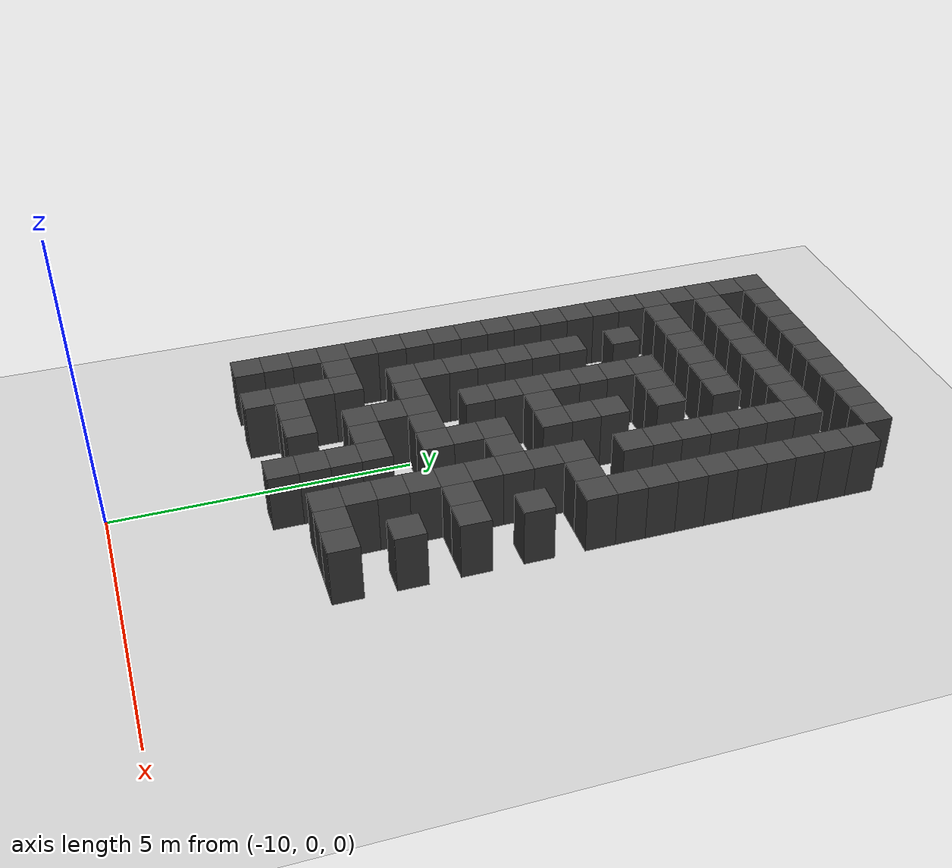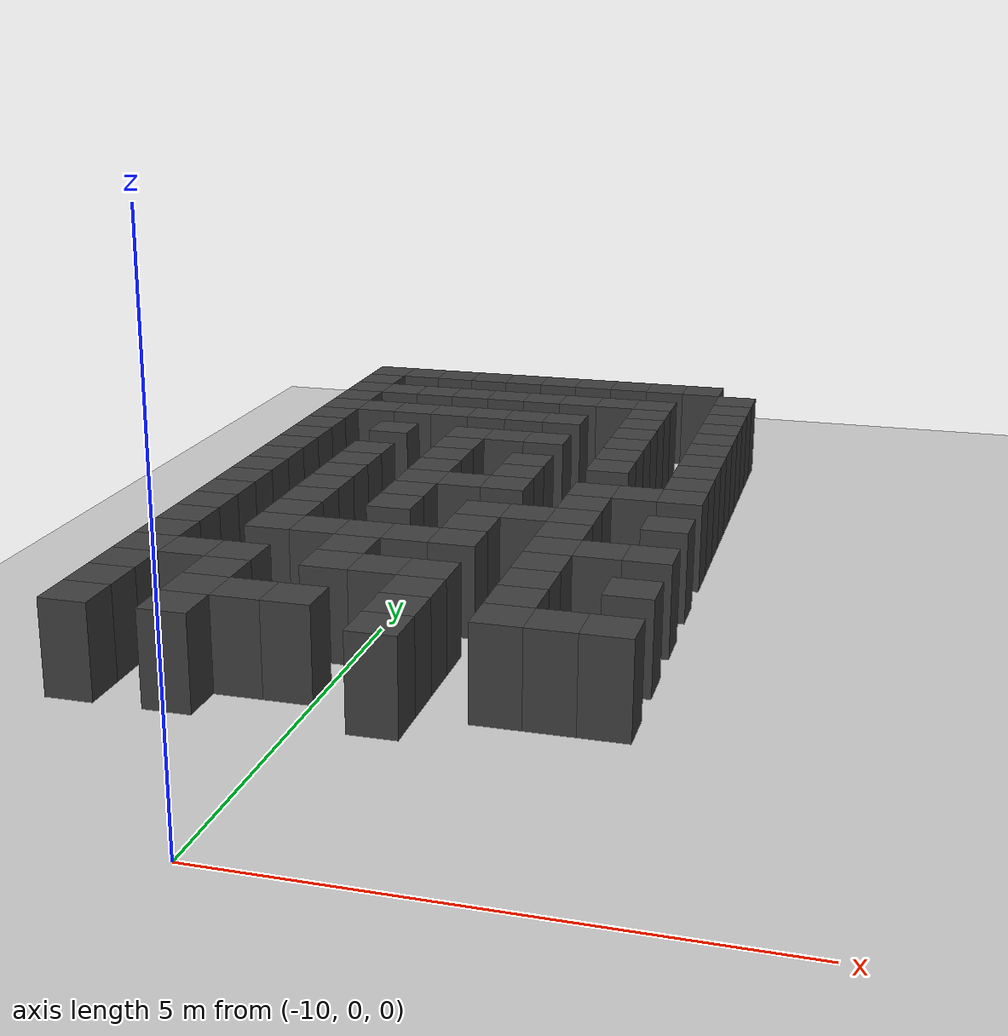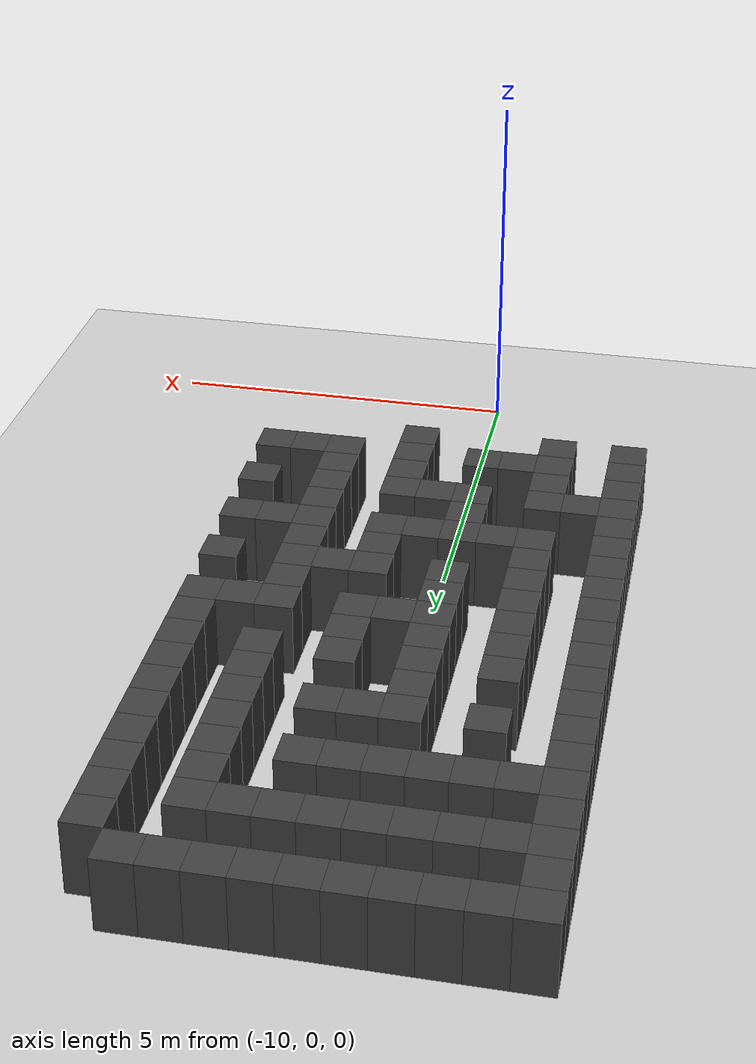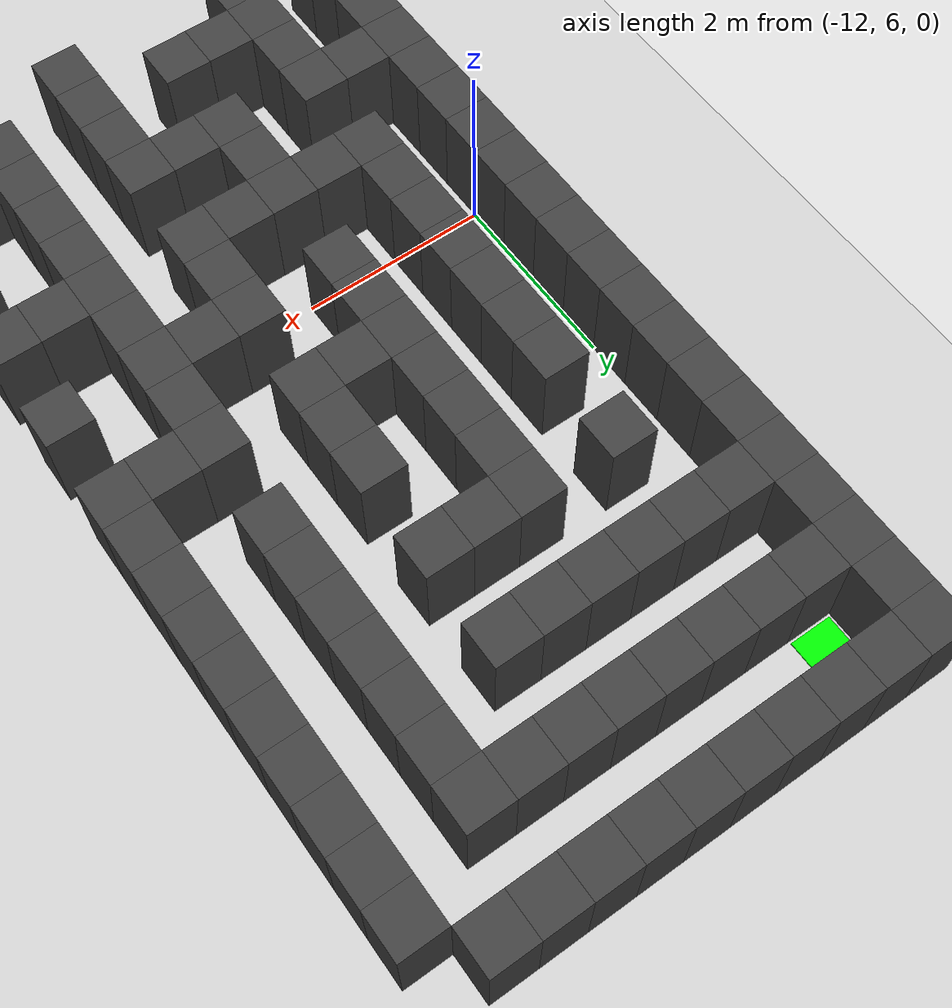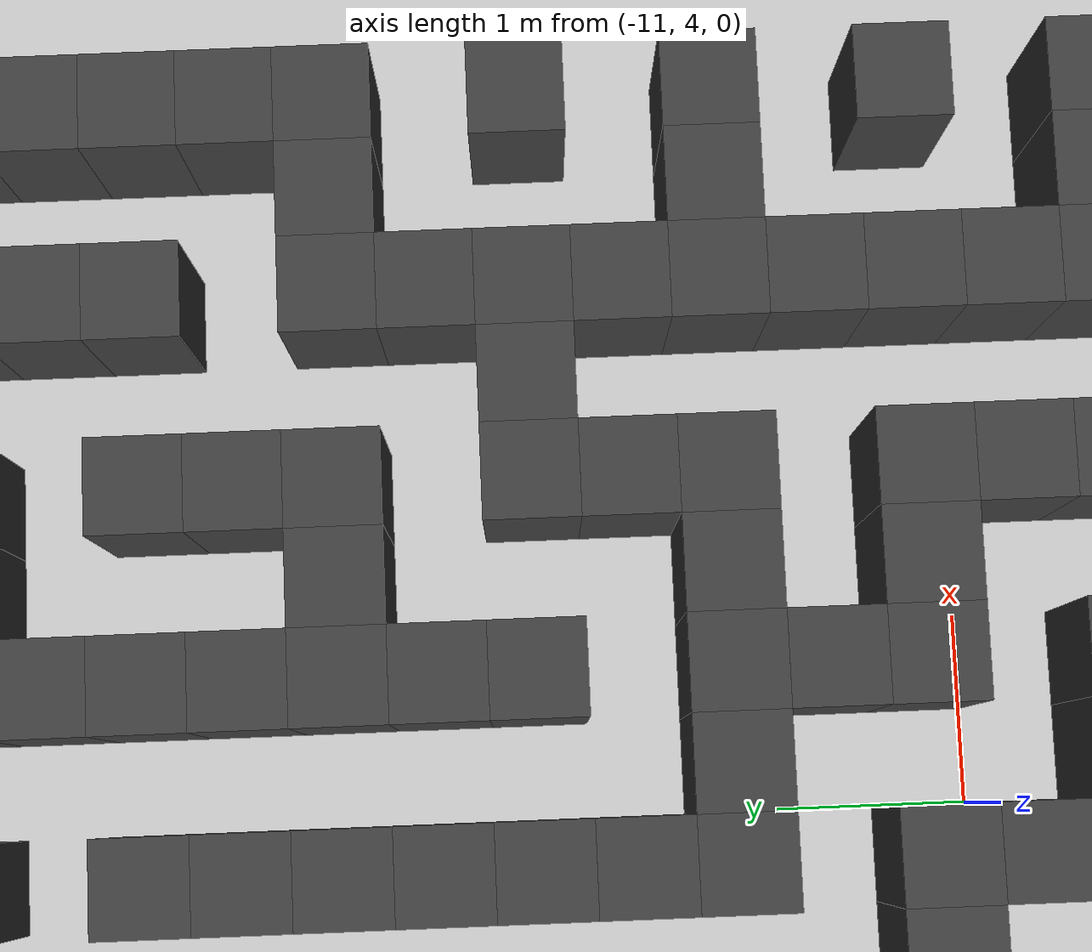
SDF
<sdf version="1.7">
 <world name="map_18347">
  <model name="ground_plane">
   <static>true</static>
   <link name="link">
    <collision name="collision">
     <geometry><plane><normal>0 0 1</normal><size>200 200</size></plane></geometry>
    </collision>
    <visual name="visual">
     <geometry><plane><normal>0 0 1</normal><size>200 200</size></plane></geometry>
     <material><ambient>0.8 0.8 0.8 1</ambient><diffuse>0.8 0.8 0.8 1</diffuse></material>
    </visual>
   </link>
  </model>
  <model name="maze_environment">
   <static>true</static>
   <link name="wall_0">
    <pose>-12.250 12.250 0.500 0 0 0</pose>
    <collision name="col"><geometry><box><size>0.5 0.5 1.0</size></box></geometry></collision>
    <visual name="vis">
     <geometry><box><size>0.5 0.5 1.0</size></box></geometry>
     <material><ambient>0.15 0.15 0.15 1</ambient><diffuse>0.25 0.25 0.25 1</diffuse></material>
    </visual>
   </link>
   <link name="wall_1">
    <pose>-11.750 12.250 0.500 0 0 0</pose>
    <collision name="col"><geometry><box><size>0.5 0.5 1.0</size></box></geometry></collision>
    <visual name="vis">
     <geometry><box><size>0.5 0.5 1.0</size></box></geometry>
     <material><ambient>0.15 0.15 0.15 1</ambient><diffuse>0.25 0.25 0.25 1</diffuse></material>
    </visual>
   </link>
   <link name="wall_2">
    <pose>-11.250 12.250 0.500 0 0 0</pose>
    <collision name="col"><geometry><box><size>0.5 0.5 1.0</size></box></geometry></collision>
    <visual name="vis">
     <geometry><box><size>0.5 0.5 1.0</size></box></geometry>
     <material><ambient>0.15 0.15 0.15 1</ambient><diffuse>0.25 0.25 0.25 1</diffuse></material>
    </visual>
   </link>
   <link name="wall_3">
    <pose>-10.750 12.250 0.500 0 0 0</pose>
    <collision name="col"><geometry><box><size>0.5 0.5 1.0</size></box></geometry></collision>
    <visual name="vis">
     <geometry><box><size>0.5 0.5 1.0</size></box></geometry>
     <material><ambient>0.15 0.15 0.15 1</ambient><diffuse>0.25 0.25 0.25 1</diffuse></material>
    </visual>
   </link>
   <link name="wall_4">
    <pose>-10.250 12.250 0.500 0 0 0</pose>
    <collision name="col"><geometry><box><size>0.5 0.5 1.0</size></box></geometry></collision>
    <visual name="vis">
     <geometry><box><size>0.5 0.5 1.0</size></box></geometry>
     <material><ambient>0.15 0.15 0.15 1</ambient><diffuse>0.25 0.25 0.25 1</diffuse></material>
    </visual>
   </link>
   <link name="wall_5">
    <pose>-9.750 12.250 0.500 0 0 0</pose>
    <collision name="col"><geometry><box><size>0.5 0.5 1.0</size></box></geometry></collision>
    <visual name="vis">
     <geometry><box><size>0.5 0.5 1.0</size></box></geometry>
     <material><ambient>0.15 0.15 0.15 1</ambient><diffuse>0.25 0.25 0.25 1</diffuse></material>
    </visual>
   </link>
   <link name="wall_6">
    <pose>-9.250 12.250 0.500 0 0 0</pose>
    <collision name="col"><geometry><box><size>0.5 0.5 1.0</size></box></geometry></collision>
    <visual name="vis">
     <geometry><box><size>0.5 0.5 1.0</size></box></geometry>
     <material><ambient>0.15 0.15 0.15 1</ambient><diffuse>0.25 0.25 0.25 1</diffuse></material>
    </visual>
   </link>
   <link name="wall_7">
    <pose>-8.750 12.250 0.500 0 0 0</pose>
    <collision name="col"><geometry><box><size>0.5 0.5 1.0</size></box></geometry></collision>
    <visual name="vis">
     <geometry><box><size>0.5 0.5 1.0</size></box></geometry>
     <material><ambient>0.15 0.15 0.15 1</ambient><diffuse>0.25 0.25 0.25 1</diffuse></material>
    </visual>
   </link>
   <link name="wall_8">
    <pose>-8.250 12.250 0.500 0 0 0</pose>
    <collision name="col"><geometry><box><size>0.5 0.5 1.0</size></box></geometry></collision>
    <visual name="vis">
     <geometry><box><size>0.5 0.5 1.0</size></box></geometry>
     <material><ambient>0.15 0.15 0.15 1</ambient><diffuse>0.25 0.25 0.25 1</diffuse></material>
    </visual>
   </link>
   <link name="wall_9">
    <pose>-7.750 12.250 0.500 0 0 0</pose>
    <collision name="col"><geometry><box><size>0.5 0.5 1.0</size></box></geometry></collision>
    <visual name="vis">
     <geometry><box><size>0.5 0.5 1.0</size></box></geometry>
     <material><ambient>0.15 0.15 0.15 1</ambient><diffuse>0.25 0.25 0.25 1</diffuse></material>
    </visual>
   </link>
   <link name="wall_50">
    <pose>-12.250 11.750 0.500 0 0 0</pose>
    <collision name="col"><geometry><box><size>0.5 0.5 1.0</size></box></geometry></collision>
    <visual name="vis">
     <geometry><box><size>0.5 0.5 1.0</size></box></geometry>
     <material><ambient>0.15 0.15 0.15 1</ambient><diffuse>0.25 0.25 0.25 1</diffuse></material>
    </visual>
   </link>
   <link name="wall_51">
    <pose>-7.250 11.750 0.500 0 0 0</pose>
    <collision name="col"><geometry><box><size>0.5 0.5 1.0</size></box></geometry></collision>
    <visual name="vis">
     <geometry><box><size>0.5 0.5 1.0</size></box></geometry>
     <material><ambient>0.15 0.15 0.15 1</ambient><diffuse>0.25 0.25 0.25 1</diffuse></material>
    </visual>
   </link>
   <link name="wall_58">
    <pose>-12.250 11.250 0.500 0 0 0</pose>
    <collision name="col"><geometry><box><size>0.5 0.5 1.0</size></box></geometry></collision>
    <visual name="vis">
     <geometry><box><size>0.5 0.5 1.0</size></box></geometry>
     <material><ambient>0.15 0.15 0.15 1</ambient><diffuse>0.25 0.25 0.25 1</diffuse></material>
    </visual>
   </link>
   <link name="wall_59">
    <pose>-11.750 11.250 0.500 0 0 0</pose>
    <collision name="col"><geometry><box><size>0.5 0.5 1.0</size></box></geometry></collision>
    <visual name="vis">
     <geometry><box><size>0.5 0.5 1.0</size></box></geometry>
     <material><ambient>0.15 0.15 0.15 1</ambient><diffuse>0.25 0.25 0.25 1</diffuse></material>
    </visual>
   </link>
   <link name="wall_60">
    <pose>-11.250 11.250 0.500 0 0 0</pose>
    <collision name="col"><geometry><box><size>0.5 0.5 1.0</size></box></geometry></collision>
    <visual name="vis">
     <geometry><box><size>0.5 0.5 1.0</size></box></geometry>
     <material><ambient>0.15 0.15 0.15 1</ambient><diffuse>0.25 0.25 0.25 1</diffuse></material>
    </visual>
   </link>
   <link name="wall_61">
    <pose>-10.750 11.250 0.500 0 0 0</pose>
    <collision name="col"><geometry><box><size>0.5 0.5 1.0</size></box></geometry></collision>
    <visual name="vis">
     <geometry><box><size>0.5 0.5 1.0</size></box></geometry>
     <material><ambient>0.15 0.15 0.15 1</ambient><diffuse>0.25 0.25 0.25 1</diffuse></material>
    </visual>
   </link>
   <link name="wall_62">
    <pose>-10.250 11.250 0.500 0 0 0</pose>
    <collision name="col"><geometry><box><size>0.5 0.5 1.0</size></box></geometry></collision>
    <visual name="vis">
     <geometry><box><size>0.5 0.5 1.0</size></box></geometry>
     <material><ambient>0.15 0.15 0.15 1</ambient><diffuse>0.25 0.25 0.25 1</diffuse></material>
    </visual>
   </link>
   <link name="wall_63">
    <pose>-9.750 11.250 0.500 0 0 0</pose>
    <collision name="col"><geometry><box><size>0.5 0.5 1.0</size></box></geometry></collision>
    <visual name="vis">
     <geometry><box><size>0.5 0.5 1.0</size></box></geometry>
     <material><ambient>0.15 0.15 0.15 1</ambient><diffuse>0.25 0.25 0.25 1</diffuse></material>
    </visual>
   </link>
   <link name="wall_64">
    <pose>-9.250 11.250 0.500 0 0 0</pose>
    <collision name="col"><geometry><box><size>0.5 0.5 1.0</size></box></geometry></collision>
    <visual name="vis">
     <geometry><box><size>0.5 0.5 1.0</size></box></geometry>
     <material><ambient>0.15 0.15 0.15 1</ambient><diffuse>0.25 0.25 0.25 1</diffuse></material>
    </visual>
   </link>
   <link name="wall_65">
    <pose>-8.750 11.250 0.500 0 0 0</pose>
    <collision name="col"><geometry><box><size>0.5 0.5 1.0</size></box></geometry></collision>
    <visual name="vis">
     <geometry><box><size>0.5 0.5 1.0</size></box></geometry>
     <material><ambient>0.15 0.15 0.15 1</ambient><diffuse>0.25 0.25 0.25 1</diffuse></material>
    </visual>
   </link>
   <link name="wall_66">
    <pose>-8.250 11.250 0.500 0 0 0</pose>
    <collision name="col"><geometry><box><size>0.5 0.5 1.0</size></box></geometry></collision>
    <visual name="vis">
     <geometry><box><size>0.5 0.5 1.0</size></box></geometry>
     <material><ambient>0.15 0.15 0.15 1</ambient><diffuse>0.25 0.25 0.25 1</diffuse></material>
    </visual>
   </link>
   <link name="wall_67">
    <pose>-7.250 11.250 0.500 0 0 0</pose>
    <collision name="col"><geometry><box><size>0.5 0.5 1.0</size></box></geometry></collision>
    <visual name="vis">
     <geometry><box><size>0.5 0.5 1.0</size></box></geometry>
     <material><ambient>0.15 0.15 0.15 1</ambient><diffuse>0.25 0.25 0.25 1</diffuse></material>
    </visual>
   </link>
   <link name="wall_94">
    <pose>-12.250 10.750 0.500 0 0 0</pose>
    <collision name="col"><geometry><box><size>0.5 0.5 1.0</size></box></geometry></collision>
    <visual name="vis">
     <geometry><box><size>0.5 0.5 1.0</size></box></geometry>
     <material><ambient>0.15 0.15 0.15 1</ambient><diffuse>0.25 0.25 0.25 1</diffuse></material>
    </visual>
   </link>
   <link name="wall_95">
    <pose>-8.250 10.750 0.500 0 0 0</pose>
    <collision name="col"><geometry><box><size>0.5 0.5 1.0</size></box></geometry></collision>
    <visual name="vis">
     <geometry><box><size>0.5 0.5 1.0</size></box></geometry>
     <material><ambient>0.15 0.15 0.15 1</ambient><diffuse>0.25 0.25 0.25 1</diffuse></material>
    </visual>
   </link>
   <link name="wall_96">
    <pose>-7.250 10.750 0.500 0 0 0</pose>
    <collision name="col"><geometry><box><size>0.5 0.5 1.0</size></box></geometry></collision>
    <visual name="vis">
     <geometry><box><size>0.5 0.5 1.0</size></box></geometry>
     <material><ambient>0.15 0.15 0.15 1</ambient><diffuse>0.25 0.25 0.25 1</diffuse></material>
    </visual>
   </link>
   <link name="wall_106">
    <pose>-12.250 10.250 0.500 0 0 0</pose>
    <collision name="col"><geometry><box><size>0.5 0.5 1.0</size></box></geometry></collision>
    <visual name="vis">
     <geometry><box><size>0.5 0.5 1.0</size></box></geometry>
     <material><ambient>0.15 0.15 0.15 1</ambient><diffuse>0.25 0.25 0.25 1</diffuse></material>
    </visual>
   </link>
   <link name="wall_107">
    <pose>-11.750 10.250 0.500 0 0 0</pose>
    <collision name="col"><geometry><box><size>0.5 0.5 1.0</size></box></geometry></collision>
    <visual name="vis">
     <geometry><box><size>0.5 0.5 1.0</size></box></geometry>
     <material><ambient>0.15 0.15 0.15 1</ambient><diffuse>0.25 0.25 0.25 1</diffuse></material>
    </visual>
   </link>
   <link name="wall_108">
    <pose>-11.250 10.250 0.500 0 0 0</pose>
    <collision name="col"><geometry><box><size>0.5 0.5 1.0</size></box></geometry></collision>
    <visual name="vis">
     <geometry><box><size>0.5 0.5 1.0</size></box></geometry>
     <material><ambient>0.15 0.15 0.15 1</ambient><diffuse>0.25 0.25 0.25 1</diffuse></material>
    </visual>
   </link>
   <link name="wall_109">
    <pose>-10.750 10.250 0.500 0 0 0</pose>
    <collision name="col"><geometry><box><size>0.5 0.5 1.0</size></box></geometry></collision>
    <visual name="vis">
     <geometry><box><size>0.5 0.5 1.0</size></box></geometry>
     <material><ambient>0.15 0.15 0.15 1</ambient><diffuse>0.25 0.25 0.25 1</diffuse></material>
    </visual>
   </link>
   <link name="wall_110">
    <pose>-10.250 10.250 0.500 0 0 0</pose>
    <collision name="col"><geometry><box><size>0.5 0.5 1.0</size></box></geometry></collision>
    <visual name="vis">
     <geometry><box><size>0.5 0.5 1.0</size></box></geometry>
     <material><ambient>0.15 0.15 0.15 1</ambient><diffuse>0.25 0.25 0.25 1</diffuse></material>
    </visual>
   </link>
   <link name="wall_111">
    <pose>-9.750 10.250 0.500 0 0 0</pose>
    <collision name="col"><geometry><box><size>0.5 0.5 1.0</size></box></geometry></collision>
    <visual name="vis">
     <geometry><box><size>0.5 0.5 1.0</size></box></geometry>
     <material><ambient>0.15 0.15 0.15 1</ambient><diffuse>0.25 0.25 0.25 1</diffuse></material>
    </visual>
   </link>
   <link name="wall_112">
    <pose>-9.250 10.250 0.500 0 0 0</pose>
    <collision name="col"><geometry><box><size>0.5 0.5 1.0</size></box></geometry></collision>
    <visual name="vis">
     <geometry><box><size>0.5 0.5 1.0</size></box></geometry>
     <material><ambient>0.15 0.15 0.15 1</ambient><diffuse>0.25 0.25 0.25 1</diffuse></material>
    </visual>
   </link>
   <link name="wall_113">
    <pose>-8.250 10.250 0.500 0 0 0</pose>
    <collision name="col"><geometry><box><size>0.5 0.5 1.0</size></box></geometry></collision>
    <visual name="vis">
     <geometry><box><size>0.5 0.5 1.0</size></box></geometry>
     <material><ambient>0.15 0.15 0.15 1</ambient><diffuse>0.25 0.25 0.25 1</diffuse></material>
    </visual>
   </link>
   <link name="wall_114">
    <pose>-7.250 10.250 0.500 0 0 0</pose>
    <collision name="col"><geometry><box><size>0.5 0.5 1.0</size></box></geometry></collision>
    <visual name="vis">
     <geometry><box><size>0.5 0.5 1.0</size></box></geometry>
     <material><ambient>0.15 0.15 0.15 1</ambient><diffuse>0.25 0.25 0.25 1</diffuse></material>
    </visual>
   </link>
   <link name="wall_144">
    <pose>-12.250 9.750 0.500 0 0 0</pose>
    <collision name="col"><geometry><box><size>0.5 0.5 1.0</size></box></geometry></collision>
    <visual name="vis">
     <geometry><box><size>0.5 0.5 1.0</size></box></geometry>
     <material><ambient>0.15 0.15 0.15 1</ambient><diffuse>0.25 0.25 0.25 1</diffuse></material>
    </visual>
   </link>
   <link name="wall_145">
    <pose>-8.250 9.750 0.500 0 0 0</pose>
    <collision name="col"><geometry><box><size>0.5 0.5 1.0</size></box></geometry></collision>
    <visual name="vis">
     <geometry><box><size>0.5 0.5 1.0</size></box></geometry>
     <material><ambient>0.15 0.15 0.15 1</ambient><diffuse>0.25 0.25 0.25 1</diffuse></material>
    </visual>
   </link>
   <link name="wall_146">
    <pose>-7.250 9.750 0.500 0 0 0</pose>
    <collision name="col"><geometry><box><size>0.5 0.5 1.0</size></box></geometry></collision>
    <visual name="vis">
     <geometry><box><size>0.5 0.5 1.0</size></box></geometry>
     <material><ambient>0.15 0.15 0.15 1</ambient><diffuse>0.25 0.25 0.25 1</diffuse></material>
    </visual>
   </link>
   <link name="wall_161">
    <pose>-12.250 9.250 0.500 0 0 0</pose>
    <collision name="col"><geometry><box><size>0.5 0.5 1.0</size></box></geometry></collision>
    <visual name="vis">
     <geometry><box><size>0.5 0.5 1.0</size></box></geometry>
     <material><ambient>0.15 0.15 0.15 1</ambient><diffuse>0.25 0.25 0.25 1</diffuse></material>
    </visual>
   </link>
   <link name="wall_162">
    <pose>-11.250 9.250 0.500 0 0 0</pose>
    <collision name="col"><geometry><box><size>0.5 0.5 1.0</size></box></geometry></collision>
    <visual name="vis">
     <geometry><box><size>0.5 0.5 1.0</size></box></geometry>
     <material><ambient>0.15 0.15 0.15 1</ambient><diffuse>0.25 0.25 0.25 1</diffuse></material>
    </visual>
   </link>
   <link name="wall_163">
    <pose>-10.250 9.250 0.500 0 0 0</pose>
    <collision name="col"><geometry><box><size>0.5 0.5 1.0</size></box></geometry></collision>
    <visual name="vis">
     <geometry><box><size>0.5 0.5 1.0</size></box></geometry>
     <material><ambient>0.15 0.15 0.15 1</ambient><diffuse>0.25 0.25 0.25 1</diffuse></material>
    </visual>
   </link>
   <link name="wall_164">
    <pose>-9.750 9.250 0.500 0 0 0</pose>
    <collision name="col"><geometry><box><size>0.5 0.5 1.0</size></box></geometry></collision>
    <visual name="vis">
     <geometry><box><size>0.5 0.5 1.0</size></box></geometry>
     <material><ambient>0.15 0.15 0.15 1</ambient><diffuse>0.25 0.25 0.25 1</diffuse></material>
    </visual>
   </link>
   <link name="wall_165">
    <pose>-9.250 9.250 0.500 0 0 0</pose>
    <collision name="col"><geometry><box><size>0.5 0.5 1.0</size></box></geometry></collision>
    <visual name="vis">
     <geometry><box><size>0.5 0.5 1.0</size></box></geometry>
     <material><ambient>0.15 0.15 0.15 1</ambient><diffuse>0.25 0.25 0.25 1</diffuse></material>
    </visual>
   </link>
   <link name="wall_166">
    <pose>-8.250 9.250 0.500 0 0 0</pose>
    <collision name="col"><geometry><box><size>0.5 0.5 1.0</size></box></geometry></collision>
    <visual name="vis">
     <geometry><box><size>0.5 0.5 1.0</size></box></geometry>
     <material><ambient>0.15 0.15 0.15 1</ambient><diffuse>0.25 0.25 0.25 1</diffuse></material>
    </visual>
   </link>
   <link name="wall_167">
    <pose>-7.250 9.250 0.500 0 0 0</pose>
    <collision name="col"><geometry><box><size>0.5 0.5 1.0</size></box></geometry></collision>
    <visual name="vis">
     <geometry><box><size>0.5 0.5 1.0</size></box></geometry>
     <material><ambient>0.15 0.15 0.15 1</ambient><diffuse>0.25 0.25 0.25 1</diffuse></material>
    </visual>
   </link>
   <link name="wall_190">
    <pose>-12.250 8.750 0.500 0 0 0</pose>
    <collision name="col"><geometry><box><size>0.5 0.5 1.0</size></box></geometry></collision>
    <visual name="vis">
     <geometry><box><size>0.5 0.5 1.0</size></box></geometry>
     <material><ambient>0.15 0.15 0.15 1</ambient><diffuse>0.25 0.25 0.25 1</diffuse></material>
    </visual>
   </link>
   <link name="wall_191">
    <pose>-10.250 8.750 0.500 0 0 0</pose>
    <collision name="col"><geometry><box><size>0.5 0.5 1.0</size></box></geometry></collision>
    <visual name="vis">
     <geometry><box><size>0.5 0.5 1.0</size></box></geometry>
     <material><ambient>0.15 0.15 0.15 1</ambient><diffuse>0.25 0.25 0.25 1</diffuse></material>
    </visual>
   </link>
   <link name="wall_192">
    <pose>-8.250 8.750 0.500 0 0 0</pose>
    <collision name="col"><geometry><box><size>0.5 0.5 1.0</size></box></geometry></collision>
    <visual name="vis">
     <geometry><box><size>0.5 0.5 1.0</size></box></geometry>
     <material><ambient>0.15 0.15 0.15 1</ambient><diffuse>0.25 0.25 0.25 1</diffuse></material>
    </visual>
   </link>
   <link name="wall_193">
    <pose>-7.250 8.750 0.500 0 0 0</pose>
    <collision name="col"><geometry><box><size>0.5 0.5 1.0</size></box></geometry></collision>
    <visual name="vis">
     <geometry><box><size>0.5 0.5 1.0</size></box></geometry>
     <material><ambient>0.15 0.15 0.15 1</ambient><diffuse>0.25 0.25 0.25 1</diffuse></material>
    </visual>
   </link>
   <link name="wall_206">
    <pose>-12.250 8.250 0.500 0 0 0</pose>
    <collision name="col"><geometry><box><size>0.5 0.5 1.0</size></box></geometry></collision>
    <visual name="vis">
     <geometry><box><size>0.5 0.5 1.0</size></box></geometry>
     <material><ambient>0.15 0.15 0.15 1</ambient><diffuse>0.25 0.25 0.25 1</diffuse></material>
    </visual>
   </link>
   <link name="wall_207">
    <pose>-11.250 8.250 0.500 0 0 0</pose>
    <collision name="col"><geometry><box><size>0.5 0.5 1.0</size></box></geometry></collision>
    <visual name="vis">
     <geometry><box><size>0.5 0.5 1.0</size></box></geometry>
     <material><ambient>0.15 0.15 0.15 1</ambient><diffuse>0.25 0.25 0.25 1</diffuse></material>
    </visual>
   </link>
   <link name="wall_208">
    <pose>-10.250 8.250 0.500 0 0 0</pose>
    <collision name="col"><geometry><box><size>0.5 0.5 1.0</size></box></geometry></collision>
    <visual name="vis">
     <geometry><box><size>0.5 0.5 1.0</size></box></geometry>
     <material><ambient>0.15 0.15 0.15 1</ambient><diffuse>0.25 0.25 0.25 1</diffuse></material>
    </visual>
   </link>
   <link name="wall_209">
    <pose>-9.250 8.250 0.500 0 0 0</pose>
    <collision name="col"><geometry><box><size>0.5 0.5 1.0</size></box></geometry></collision>
    <visual name="vis">
     <geometry><box><size>0.5 0.5 1.0</size></box></geometry>
     <material><ambient>0.15 0.15 0.15 1</ambient><diffuse>0.25 0.25 0.25 1</diffuse></material>
    </visual>
   </link>
   <link name="wall_210">
    <pose>-8.250 8.250 0.500 0 0 0</pose>
    <collision name="col"><geometry><box><size>0.5 0.5 1.0</size></box></geometry></collision>
    <visual name="vis">
     <geometry><box><size>0.5 0.5 1.0</size></box></geometry>
     <material><ambient>0.15 0.15 0.15 1</ambient><diffuse>0.25 0.25 0.25 1</diffuse></material>
    </visual>
   </link>
   <link name="wall_211">
    <pose>-7.250 8.250 0.500 0 0 0</pose>
    <collision name="col"><geometry><box><size>0.5 0.5 1.0</size></box></geometry></collision>
    <visual name="vis">
     <geometry><box><size>0.5 0.5 1.0</size></box></geometry>
     <material><ambient>0.15 0.15 0.15 1</ambient><diffuse>0.25 0.25 0.25 1</diffuse></material>
    </visual>
   </link>
   <link name="wall_241">
    <pose>-12.250 7.750 0.500 0 0 0</pose>
    <collision name="col"><geometry><box><size>0.5 0.5 1.0</size></box></geometry></collision>
    <visual name="vis">
     <geometry><box><size>0.5 0.5 1.0</size></box></geometry>
     <material><ambient>0.15 0.15 0.15 1</ambient><diffuse>0.25 0.25 0.25 1</diffuse></material>
    </visual>
   </link>
   <link name="wall_242">
    <pose>-11.250 7.750 0.500 0 0 0</pose>
    <collision name="col"><geometry><box><size>0.5 0.5 1.0</size></box></geometry></collision>
    <visual name="vis">
     <geometry><box><size>0.5 0.5 1.0</size></box></geometry>
     <material><ambient>0.15 0.15 0.15 1</ambient><diffuse>0.25 0.25 0.25 1</diffuse></material>
    </visual>
   </link>
   <link name="wall_243">
    <pose>-10.250 7.750 0.500 0 0 0</pose>
    <collision name="col"><geometry><box><size>0.5 0.5 1.0</size></box></geometry></collision>
    <visual name="vis">
     <geometry><box><size>0.5 0.5 1.0</size></box></geometry>
     <material><ambient>0.15 0.15 0.15 1</ambient><diffuse>0.25 0.25 0.25 1</diffuse></material>
    </visual>
   </link>
   <link name="wall_244">
    <pose>-9.250 7.750 0.500 0 0 0</pose>
    <collision name="col"><geometry><box><size>0.5 0.5 1.0</size></box></geometry></collision>
    <visual name="vis">
     <geometry><box><size>0.5 0.5 1.0</size></box></geometry>
     <material><ambient>0.15 0.15 0.15 1</ambient><diffuse>0.25 0.25 0.25 1</diffuse></material>
    </visual>
   </link>
   <link name="wall_245">
    <pose>-7.250 7.750 0.500 0 0 0</pose>
    <collision name="col"><geometry><box><size>0.5 0.5 1.0</size></box></geometry></collision>
    <visual name="vis">
     <geometry><box><size>0.5 0.5 1.0</size></box></geometry>
     <material><ambient>0.15 0.15 0.15 1</ambient><diffuse>0.25 0.25 0.25 1</diffuse></material>
    </visual>
   </link>
   <link name="wall_256">
    <pose>-12.250 7.250 0.500 0 0 0</pose>
    <collision name="col"><geometry><box><size>0.5 0.5 1.0</size></box></geometry></collision>
    <visual name="vis">
     <geometry><box><size>0.5 0.5 1.0</size></box></geometry>
     <material><ambient>0.15 0.15 0.15 1</ambient><diffuse>0.25 0.25 0.25 1</diffuse></material>
    </visual>
   </link>
   <link name="wall_257">
    <pose>-11.250 7.250 0.500 0 0 0</pose>
    <collision name="col"><geometry><box><size>0.5 0.5 1.0</size></box></geometry></collision>
    <visual name="vis">
     <geometry><box><size>0.5 0.5 1.0</size></box></geometry>
     <material><ambient>0.15 0.15 0.15 1</ambient><diffuse>0.25 0.25 0.25 1</diffuse></material>
    </visual>
   </link>
   <link name="wall_258">
    <pose>-10.250 7.250 0.500 0 0 0</pose>
    <collision name="col"><geometry><box><size>0.5 0.5 1.0</size></box></geometry></collision>
    <visual name="vis">
     <geometry><box><size>0.5 0.5 1.0</size></box></geometry>
     <material><ambient>0.15 0.15 0.15 1</ambient><diffuse>0.25 0.25 0.25 1</diffuse></material>
    </visual>
   </link>
   <link name="wall_259">
    <pose>-9.750 7.250 0.500 0 0 0</pose>
    <collision name="col"><geometry><box><size>0.5 0.5 1.0</size></box></geometry></collision>
    <visual name="vis">
     <geometry><box><size>0.5 0.5 1.0</size></box></geometry>
     <material><ambient>0.15 0.15 0.15 1</ambient><diffuse>0.25 0.25 0.25 1</diffuse></material>
    </visual>
   </link>
   <link name="wall_260">
    <pose>-9.250 7.250 0.500 0 0 0</pose>
    <collision name="col"><geometry><box><size>0.5 0.5 1.0</size></box></geometry></collision>
    <visual name="vis">
     <geometry><box><size>0.5 0.5 1.0</size></box></geometry>
     <material><ambient>0.15 0.15 0.15 1</ambient><diffuse>0.25 0.25 0.25 1</diffuse></material>
    </visual>
   </link>
   <link name="wall_261">
    <pose>-8.250 7.250 0.500 0 0 0</pose>
    <collision name="col"><geometry><box><size>0.5 0.5 1.0</size></box></geometry></collision>
    <visual name="vis">
     <geometry><box><size>0.5 0.5 1.0</size></box></geometry>
     <material><ambient>0.15 0.15 0.15 1</ambient><diffuse>0.25 0.25 0.25 1</diffuse></material>
    </visual>
   </link>
   <link name="wall_262">
    <pose>-7.750 7.250 0.500 0 0 0</pose>
    <collision name="col"><geometry><box><size>0.5 0.5 1.0</size></box></geometry></collision>
    <visual name="vis">
     <geometry><box><size>0.5 0.5 1.0</size></box></geometry>
     <material><ambient>0.15 0.15 0.15 1</ambient><diffuse>0.25 0.25 0.25 1</diffuse></material>
    </visual>
   </link>
   <link name="wall_263">
    <pose>-7.250 7.250 0.500 0 0 0</pose>
    <collision name="col"><geometry><box><size>0.5 0.5 1.0</size></box></geometry></collision>
    <visual name="vis">
     <geometry><box><size>0.5 0.5 1.0</size></box></geometry>
     <material><ambient>0.15 0.15 0.15 1</ambient><diffuse>0.25 0.25 0.25 1</diffuse></material>
    </visual>
   </link>
   <link name="wall_291">
    <pose>-12.250 6.750 0.500 0 0 0</pose>
    <collision name="col"><geometry><box><size>0.5 0.5 1.0</size></box></geometry></collision>
    <visual name="vis">
     <geometry><box><size>0.5 0.5 1.0</size></box></geometry>
     <material><ambient>0.15 0.15 0.15 1</ambient><diffuse>0.25 0.25 0.25 1</diffuse></material>
    </visual>
   </link>
   <link name="wall_292">
    <pose>-11.250 6.750 0.500 0 0 0</pose>
    <collision name="col"><geometry><box><size>0.5 0.5 1.0</size></box></geometry></collision>
    <visual name="vis">
     <geometry><box><size>0.5 0.5 1.0</size></box></geometry>
     <material><ambient>0.15 0.15 0.15 1</ambient><diffuse>0.25 0.25 0.25 1</diffuse></material>
    </visual>
   </link>
   <link name="wall_293">
    <pose>-10.250 6.750 0.500 0 0 0</pose>
    <collision name="col"><geometry><box><size>0.5 0.5 1.0</size></box></geometry></collision>
    <visual name="vis">
     <geometry><box><size>0.5 0.5 1.0</size></box></geometry>
     <material><ambient>0.15 0.15 0.15 1</ambient><diffuse>0.25 0.25 0.25 1</diffuse></material>
    </visual>
   </link>
   <link name="wall_294">
    <pose>-8.250 6.750 0.500 0 0 0</pose>
    <collision name="col"><geometry><box><size>0.5 0.5 1.0</size></box></geometry></collision>
    <visual name="vis">
     <geometry><box><size>0.5 0.5 1.0</size></box></geometry>
     <material><ambient>0.15 0.15 0.15 1</ambient><diffuse>0.25 0.25 0.25 1</diffuse></material>
    </visual>
   </link>
   <link name="wall_304">
    <pose>-12.250 6.250 0.500 0 0 0</pose>
    <collision name="col"><geometry><box><size>0.5 0.5 1.0</size></box></geometry></collision>
    <visual name="vis">
     <geometry><box><size>0.5 0.5 1.0</size></box></geometry>
     <material><ambient>0.15 0.15 0.15 1</ambient><diffuse>0.25 0.25 0.25 1</diffuse></material>
    </visual>
   </link>
   <link name="wall_305">
    <pose>-11.250 6.250 0.500 0 0 0</pose>
    <collision name="col"><geometry><box><size>0.5 0.5 1.0</size></box></geometry></collision>
    <visual name="vis">
     <geometry><box><size>0.5 0.5 1.0</size></box></geometry>
     <material><ambient>0.15 0.15 0.15 1</ambient><diffuse>0.25 0.25 0.25 1</diffuse></material>
    </visual>
   </link>
   <link name="wall_306">
    <pose>-10.250 6.250 0.500 0 0 0</pose>
    <collision name="col"><geometry><box><size>0.5 0.5 1.0</size></box></geometry></collision>
    <visual name="vis">
     <geometry><box><size>0.5 0.5 1.0</size></box></geometry>
     <material><ambient>0.15 0.15 0.15 1</ambient><diffuse>0.25 0.25 0.25 1</diffuse></material>
    </visual>
   </link>
   <link name="wall_307">
    <pose>-9.250 6.250 0.500 0 0 0</pose>
    <collision name="col"><geometry><box><size>0.5 0.5 1.0</size></box></geometry></collision>
    <visual name="vis">
     <geometry><box><size>0.5 0.5 1.0</size></box></geometry>
     <material><ambient>0.15 0.15 0.15 1</ambient><diffuse>0.25 0.25 0.25 1</diffuse></material>
    </visual>
   </link>
   <link name="wall_308">
    <pose>-8.750 6.250 0.500 0 0 0</pose>
    <collision name="col"><geometry><box><size>0.5 0.5 1.0</size></box></geometry></collision>
    <visual name="vis">
     <geometry><box><size>0.5 0.5 1.0</size></box></geometry>
     <material><ambient>0.15 0.15 0.15 1</ambient><diffuse>0.25 0.25 0.25 1</diffuse></material>
    </visual>
   </link>
   <link name="wall_309">
    <pose>-8.250 6.250 0.500 0 0 0</pose>
    <collision name="col"><geometry><box><size>0.5 0.5 1.0</size></box></geometry></collision>
    <visual name="vis">
     <geometry><box><size>0.5 0.5 1.0</size></box></geometry>
     <material><ambient>0.15 0.15 0.15 1</ambient><diffuse>0.25 0.25 0.25 1</diffuse></material>
    </visual>
   </link>
   <link name="wall_310">
    <pose>-7.250 6.250 0.500 0 0 0</pose>
    <collision name="col"><geometry><box><size>0.5 0.5 1.0</size></box></geometry></collision>
    <visual name="vis">
     <geometry><box><size>0.5 0.5 1.0</size></box></geometry>
     <material><ambient>0.15 0.15 0.15 1</ambient><diffuse>0.25 0.25 0.25 1</diffuse></material>
    </visual>
   </link>
   <link name="wall_339">
    <pose>-12.250 5.750 0.500 0 0 0</pose>
    <collision name="col"><geometry><box><size>0.5 0.5 1.0</size></box></geometry></collision>
    <visual name="vis">
     <geometry><box><size>0.5 0.5 1.0</size></box></geometry>
     <material><ambient>0.15 0.15 0.15 1</ambient><diffuse>0.25 0.25 0.25 1</diffuse></material>
    </visual>
   </link>
   <link name="wall_340">
    <pose>-11.250 5.750 0.500 0 0 0</pose>
    <collision name="col"><geometry><box><size>0.5 0.5 1.0</size></box></geometry></collision>
    <visual name="vis">
     <geometry><box><size>0.5 0.5 1.0</size></box></geometry>
     <material><ambient>0.15 0.15 0.15 1</ambient><diffuse>0.25 0.25 0.25 1</diffuse></material>
    </visual>
   </link>
   <link name="wall_341">
    <pose>-9.250 5.750 0.500 0 0 0</pose>
    <collision name="col"><geometry><box><size>0.5 0.5 1.0</size></box></geometry></collision>
    <visual name="vis">
     <geometry><box><size>0.5 0.5 1.0</size></box></geometry>
     <material><ambient>0.15 0.15 0.15 1</ambient><diffuse>0.25 0.25 0.25 1</diffuse></material>
    </visual>
   </link>
   <link name="wall_342">
    <pose>-8.250 5.750 0.500 0 0 0</pose>
    <collision name="col"><geometry><box><size>0.5 0.5 1.0</size></box></geometry></collision>
    <visual name="vis">
     <geometry><box><size>0.5 0.5 1.0</size></box></geometry>
     <material><ambient>0.15 0.15 0.15 1</ambient><diffuse>0.25 0.25 0.25 1</diffuse></material>
    </visual>
   </link>
   <link name="wall_355">
    <pose>-12.250 5.250 0.500 0 0 0</pose>
    <collision name="col"><geometry><box><size>0.5 0.5 1.0</size></box></geometry></collision>
    <visual name="vis">
     <geometry><box><size>0.5 0.5 1.0</size></box></geometry>
     <material><ambient>0.15 0.15 0.15 1</ambient><diffuse>0.25 0.25 0.25 1</diffuse></material>
    </visual>
   </link>
   <link name="wall_356">
    <pose>-11.250 5.250 0.500 0 0 0</pose>
    <collision name="col"><geometry><box><size>0.5 0.5 1.0</size></box></geometry></collision>
    <visual name="vis">
     <geometry><box><size>0.5 0.5 1.0</size></box></geometry>
     <material><ambient>0.15 0.15 0.15 1</ambient><diffuse>0.25 0.25 0.25 1</diffuse></material>
    </visual>
   </link>
   <link name="wall_357">
    <pose>-10.750 5.250 0.500 0 0 0</pose>
    <collision name="col"><geometry><box><size>0.5 0.5 1.0</size></box></geometry></collision>
    <visual name="vis">
     <geometry><box><size>0.5 0.5 1.0</size></box></geometry>
     <material><ambient>0.15 0.15 0.15 1</ambient><diffuse>0.25 0.25 0.25 1</diffuse></material>
    </visual>
   </link>
   <link name="wall_358">
    <pose>-10.250 5.250 0.500 0 0 0</pose>
    <collision name="col"><geometry><box><size>0.5 0.5 1.0</size></box></geometry></collision>
    <visual name="vis">
     <geometry><box><size>0.5 0.5 1.0</size></box></geometry>
     <material><ambient>0.15 0.15 0.15 1</ambient><diffuse>0.25 0.25 0.25 1</diffuse></material>
    </visual>
   </link>
   <link name="wall_359">
    <pose>-9.750 5.250 0.500 0 0 0</pose>
    <collision name="col"><geometry><box><size>0.5 0.5 1.0</size></box></geometry></collision>
    <visual name="vis">
     <geometry><box><size>0.5 0.5 1.0</size></box></geometry>
     <material><ambient>0.15 0.15 0.15 1</ambient><diffuse>0.25 0.25 0.25 1</diffuse></material>
    </visual>
   </link>
   <link name="wall_360">
    <pose>-9.250 5.250 0.500 0 0 0</pose>
    <collision name="col"><geometry><box><size>0.5 0.5 1.0</size></box></geometry></collision>
    <visual name="vis">
     <geometry><box><size>0.5 0.5 1.0</size></box></geometry>
     <material><ambient>0.15 0.15 0.15 1</ambient><diffuse>0.25 0.25 0.25 1</diffuse></material>
    </visual>
   </link>
   <link name="wall_361">
    <pose>-8.250 5.250 0.500 0 0 0</pose>
    <collision name="col"><geometry><box><size>0.5 0.5 1.0</size></box></geometry></collision>
    <visual name="vis">
     <geometry><box><size>0.5 0.5 1.0</size></box></geometry>
     <material><ambient>0.15 0.15 0.15 1</ambient><diffuse>0.25 0.25 0.25 1</diffuse></material>
    </visual>
   </link>
   <link name="wall_362">
    <pose>-7.750 5.250 0.500 0 0 0</pose>
    <collision name="col"><geometry><box><size>0.5 0.5 1.0</size></box></geometry></collision>
    <visual name="vis">
     <geometry><box><size>0.5 0.5 1.0</size></box></geometry>
     <material><ambient>0.15 0.15 0.15 1</ambient><diffuse>0.25 0.25 0.25 1</diffuse></material>
    </visual>
   </link>
   <link name="wall_363">
    <pose>-7.250 5.250 0.500 0 0 0</pose>
    <collision name="col"><geometry><box><size>0.5 0.5 1.0</size></box></geometry></collision>
    <visual name="vis">
     <geometry><box><size>0.5 0.5 1.0</size></box></geometry>
     <material><ambient>0.15 0.15 0.15 1</ambient><diffuse>0.25 0.25 0.25 1</diffuse></material>
    </visual>
   </link>
   <link name="wall_390">
    <pose>-12.250 4.750 0.500 0 0 0</pose>
    <collision name="col"><geometry><box><size>0.5 0.5 1.0</size></box></geometry></collision>
    <visual name="vis">
     <geometry><box><size>0.5 0.5 1.0</size></box></geometry>
     <material><ambient>0.15 0.15 0.15 1</ambient><diffuse>0.25 0.25 0.25 1</diffuse></material>
    </visual>
   </link>
   <link name="wall_391">
    <pose>-10.250 4.750 0.500 0 0 0</pose>
    <collision name="col"><geometry><box><size>0.5 0.5 1.0</size></box></geometry></collision>
    <visual name="vis">
     <geometry><box><size>0.5 0.5 1.0</size></box></geometry>
     <material><ambient>0.15 0.15 0.15 1</ambient><diffuse>0.25 0.25 0.25 1</diffuse></material>
    </visual>
   </link>
   <link name="wall_392">
    <pose>-8.250 4.750 0.500 0 0 0</pose>
    <collision name="col"><geometry><box><size>0.5 0.5 1.0</size></box></geometry></collision>
    <visual name="vis">
     <geometry><box><size>0.5 0.5 1.0</size></box></geometry>
     <material><ambient>0.15 0.15 0.15 1</ambient><diffuse>0.25 0.25 0.25 1</diffuse></material>
    </visual>
   </link>
   <link name="wall_404">
    <pose>-12.250 4.250 0.500 0 0 0</pose>
    <collision name="col"><geometry><box><size>0.5 0.5 1.0</size></box></geometry></collision>
    <visual name="vis">
     <geometry><box><size>0.5 0.5 1.0</size></box></geometry>
     <material><ambient>0.15 0.15 0.15 1</ambient><diffuse>0.25 0.25 0.25 1</diffuse></material>
    </visual>
   </link>
   <link name="wall_405">
    <pose>-11.750 4.250 0.500 0 0 0</pose>
    <collision name="col"><geometry><box><size>0.5 0.5 1.0</size></box></geometry></collision>
    <visual name="vis">
     <geometry><box><size>0.5 0.5 1.0</size></box></geometry>
     <material><ambient>0.15 0.15 0.15 1</ambient><diffuse>0.25 0.25 0.25 1</diffuse></material>
    </visual>
   </link>
   <link name="wall_406">
    <pose>-11.250 4.250 0.500 0 0 0</pose>
    <collision name="col"><geometry><box><size>0.5 0.5 1.0</size></box></geometry></collision>
    <visual name="vis">
     <geometry><box><size>0.5 0.5 1.0</size></box></geometry>
     <material><ambient>0.15 0.15 0.15 1</ambient><diffuse>0.25 0.25 0.25 1</diffuse></material>
    </visual>
   </link>
   <link name="wall_407">
    <pose>-10.250 4.250 0.500 0 0 0</pose>
    <collision name="col"><geometry><box><size>0.5 0.5 1.0</size></box></geometry></collision>
    <visual name="vis">
     <geometry><box><size>0.5 0.5 1.0</size></box></geometry>
     <material><ambient>0.15 0.15 0.15 1</ambient><diffuse>0.25 0.25 0.25 1</diffuse></material>
    </visual>
   </link>
   <link name="wall_408">
    <pose>-9.750 4.250 0.500 0 0 0</pose>
    <collision name="col"><geometry><box><size>0.5 0.5 1.0</size></box></geometry></collision>
    <visual name="vis">
     <geometry><box><size>0.5 0.5 1.0</size></box></geometry>
     <material><ambient>0.15 0.15 0.15 1</ambient><diffuse>0.25 0.25 0.25 1</diffuse></material>
    </visual>
   </link>
   <link name="wall_409">
    <pose>-9.250 4.250 0.500 0 0 0</pose>
    <collision name="col"><geometry><box><size>0.5 0.5 1.0</size></box></geometry></collision>
    <visual name="vis">
     <geometry><box><size>0.5 0.5 1.0</size></box></geometry>
     <material><ambient>0.15 0.15 0.15 1</ambient><diffuse>0.25 0.25 0.25 1</diffuse></material>
    </visual>
   </link>
   <link name="wall_410">
    <pose>-8.250 4.250 0.500 0 0 0</pose>
    <collision name="col"><geometry><box><size>0.5 0.5 1.0</size></box></geometry></collision>
    <visual name="vis">
     <geometry><box><size>0.5 0.5 1.0</size></box></geometry>
     <material><ambient>0.15 0.15 0.15 1</ambient><diffuse>0.25 0.25 0.25 1</diffuse></material>
    </visual>
   </link>
   <link name="wall_411">
    <pose>-7.250 4.250 0.500 0 0 0</pose>
    <collision name="col"><geometry><box><size>0.5 0.5 1.0</size></box></geometry></collision>
    <visual name="vis">
     <geometry><box><size>0.5 0.5 1.0</size></box></geometry>
     <material><ambient>0.15 0.15 0.15 1</ambient><diffuse>0.25 0.25 0.25 1</diffuse></material>
    </visual>
   </link>
   <link name="wall_442">
    <pose>-12.250 3.750 0.500 0 0 0</pose>
    <collision name="col"><geometry><box><size>0.5 0.5 1.0</size></box></geometry></collision>
    <visual name="vis">
     <geometry><box><size>0.5 0.5 1.0</size></box></geometry>
     <material><ambient>0.15 0.15 0.15 1</ambient><diffuse>0.25 0.25 0.25 1</diffuse></material>
    </visual>
   </link>
   <link name="wall_443">
    <pose>-11.250 3.750 0.500 0 0 0</pose>
    <collision name="col"><geometry><box><size>0.5 0.5 1.0</size></box></geometry></collision>
    <visual name="vis">
     <geometry><box><size>0.5 0.5 1.0</size></box></geometry>
     <material><ambient>0.15 0.15 0.15 1</ambient><diffuse>0.25 0.25 0.25 1</diffuse></material>
    </visual>
   </link>
   <link name="wall_444">
    <pose>-9.250 3.750 0.500 0 0 0</pose>
    <collision name="col"><geometry><box><size>0.5 0.5 1.0</size></box></geometry></collision>
    <visual name="vis">
     <geometry><box><size>0.5 0.5 1.0</size></box></geometry>
     <material><ambient>0.15 0.15 0.15 1</ambient><diffuse>0.25 0.25 0.25 1</diffuse></material>
    </visual>
   </link>
   <link name="wall_445">
    <pose>-8.250 3.750 0.500 0 0 0</pose>
    <collision name="col"><geometry><box><size>0.5 0.5 1.0</size></box></geometry></collision>
    <visual name="vis">
     <geometry><box><size>0.5 0.5 1.0</size></box></geometry>
     <material><ambient>0.15 0.15 0.15 1</ambient><diffuse>0.25 0.25 0.25 1</diffuse></material>
    </visual>
   </link>
   <link name="wall_457">
    <pose>-12.250 3.250 0.500 0 0 0</pose>
    <collision name="col"><geometry><box><size>0.5 0.5 1.0</size></box></geometry></collision>
    <visual name="vis">
     <geometry><box><size>0.5 0.5 1.0</size></box></geometry>
     <material><ambient>0.15 0.15 0.15 1</ambient><diffuse>0.25 0.25 0.25 1</diffuse></material>
    </visual>
   </link>
   <link name="wall_458">
    <pose>-11.250 3.250 0.500 0 0 0</pose>
    <collision name="col"><geometry><box><size>0.5 0.5 1.0</size></box></geometry></collision>
    <visual name="vis">
     <geometry><box><size>0.5 0.5 1.0</size></box></geometry>
     <material><ambient>0.15 0.15 0.15 1</ambient><diffuse>0.25 0.25 0.25 1</diffuse></material>
    </visual>
   </link>
   <link name="wall_459">
    <pose>-10.750 3.250 0.500 0 0 0</pose>
    <collision name="col"><geometry><box><size>0.5 0.5 1.0</size></box></geometry></collision>
    <visual name="vis">
     <geometry><box><size>0.5 0.5 1.0</size></box></geometry>
     <material><ambient>0.15 0.15 0.15 1</ambient><diffuse>0.25 0.25 0.25 1</diffuse></material>
    </visual>
   </link>
   <link name="wall_460">
    <pose>-10.250 3.250 0.500 0 0 0</pose>
    <collision name="col"><geometry><box><size>0.5 0.5 1.0</size></box></geometry></collision>
    <visual name="vis">
     <geometry><box><size>0.5 0.5 1.0</size></box></geometry>
     <material><ambient>0.15 0.15 0.15 1</ambient><diffuse>0.25 0.25 0.25 1</diffuse></material>
    </visual>
   </link>
   <link name="wall_461">
    <pose>-9.250 3.250 0.500 0 0 0</pose>
    <collision name="col"><geometry><box><size>0.5 0.5 1.0</size></box></geometry></collision>
    <visual name="vis">
     <geometry><box><size>0.5 0.5 1.0</size></box></geometry>
     <material><ambient>0.15 0.15 0.15 1</ambient><diffuse>0.25 0.25 0.25 1</diffuse></material>
    </visual>
   </link>
   <link name="wall_462">
    <pose>-8.250 3.250 0.500 0 0 0</pose>
    <collision name="col"><geometry><box><size>0.5 0.5 1.0</size></box></geometry></collision>
    <visual name="vis">
     <geometry><box><size>0.5 0.5 1.0</size></box></geometry>
     <material><ambient>0.15 0.15 0.15 1</ambient><diffuse>0.25 0.25 0.25 1</diffuse></material>
    </visual>
   </link>
   <link name="wall_463">
    <pose>-7.750 3.250 0.500 0 0 0</pose>
    <collision name="col"><geometry><box><size>0.5 0.5 1.0</size></box></geometry></collision>
    <visual name="vis">
     <geometry><box><size>0.5 0.5 1.0</size></box></geometry>
     <material><ambient>0.15 0.15 0.15 1</ambient><diffuse>0.25 0.25 0.25 1</diffuse></material>
    </visual>
   </link>
   <link name="wall_464">
    <pose>-7.250 3.250 0.500 0 0 0</pose>
    <collision name="col"><geometry><box><size>0.5 0.5 1.0</size></box></geometry></collision>
    <visual name="vis">
     <geometry><box><size>0.5 0.5 1.0</size></box></geometry>
     <material><ambient>0.15 0.15 0.15 1</ambient><diffuse>0.25 0.25 0.25 1</diffuse></material>
    </visual>
   </link>
   <link name="wall_492">
    <pose>-12.250 2.750 0.500 0 0 0</pose>
    <collision name="col"><geometry><box><size>0.5 0.5 1.0</size></box></geometry></collision>
    <visual name="vis">
     <geometry><box><size>0.5 0.5 1.0</size></box></geometry>
     <material><ambient>0.15 0.15 0.15 1</ambient><diffuse>0.25 0.25 0.25 1</diffuse></material>
    </visual>
   </link>
   <link name="wall_493">
    <pose>-11.250 2.750 0.500 0 0 0</pose>
    <collision name="col"><geometry><box><size>0.5 0.5 1.0</size></box></geometry></collision>
    <visual name="vis">
     <geometry><box><size>0.5 0.5 1.0</size></box></geometry>
     <material><ambient>0.15 0.15 0.15 1</ambient><diffuse>0.25 0.25 0.25 1</diffuse></material>
    </visual>
   </link>
   <link name="wall_494">
    <pose>-9.250 2.750 0.500 0 0 0</pose>
    <collision name="col"><geometry><box><size>0.5 0.5 1.0</size></box></geometry></collision>
    <visual name="vis">
     <geometry><box><size>0.5 0.5 1.0</size></box></geometry>
     <material><ambient>0.15 0.15 0.15 1</ambient><diffuse>0.25 0.25 0.25 1</diffuse></material>
    </visual>
   </link>
   <link name="start_zone">
    <pose>-11.750 11.750 0.005 0 0 0</pose>
    <visual name="vis">
     <geometry><box><size>0.45 0.45 0.01</size></box></geometry>
     <material>
      <ambient>0.0 1.0 0.0 1</ambient>
      <diffuse>0.0 1.0 0.0 1</diffuse>
      <emissive>0.00 0.60 0.00 1</emissive>
     </material>
    </visual>
   </link>
  </model>
 </world>
</sdf>
